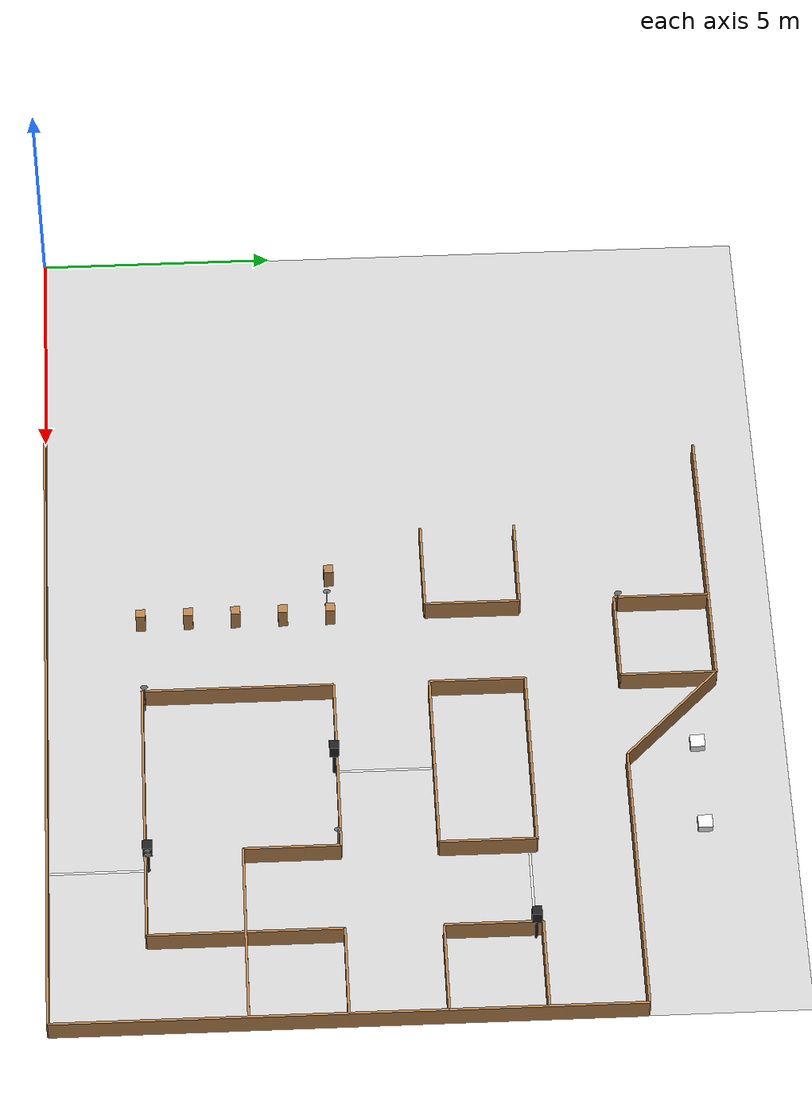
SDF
<sdf version="1.6">
 <world name="default">
  <include><uri>model://cube</uri><name>cube_1</name><pose>15.5 13.5 0 0 0 4.71238898038469</pose></include>
  <include><uri>model://cube</uri><name>cube_0</name><pose>13.5 13.5 0 0 0 4.71238898038469</pose></include>
  <model name="box_72">
   <pose>10.0 2.0 0.25 0 0 0</pose>
   <link name="link">
    <inertial>
     <mass>1</mass>
     <inertia><ixx>0</ixx><ixy>0</ixy><ixz>0</ixz><iyy>0</iyy><iyz>0</iyz><izz>0</izz></inertia>
    </inertial>
    <collision name="collision"><geometry><box><size>0.2 0.2 0.5</size></box></geometry></collision>
    <visual name="visual">
     <geometry><box><size>0.2 0.2 0.5</size></box></geometry>
     <material>
      <script><name>Gazebo/WoodPallet</name><uri>file://media/materials/scripts/gazebo.material</uri></script>
     </material>
    </visual>
   </link>
   <static>1</static>
  </model>
  <model name="box_69">
   <pose>10.0 3.0 0.25 0 0 0</pose>
   <link name="link">
    <inertial>
     <mass>1</mass>
     <inertia><ixx>0</ixx><ixy>0</ixy><ixz>0</ixz><iyy>0</iyy><iyz>0</iyz><izz>0</izz></inertia>
    </inertial>
    <collision name="collision"><geometry><box><size>0.2 0.2 0.5</size></box></geometry></collision>
    <visual name="visual">
     <geometry><box><size>0.2 0.2 0.5</size></box></geometry>
     <material>
      <script><name>Gazebo/WoodPallet</name><uri>file://media/materials/scripts/gazebo.material</uri></script>
     </material>
    </visual>
   </link>
   <static>1</static>
  </model>
  <model name="box_67">
   <pose>10.0 4.0 0.25 0 0 0</pose>
   <link name="link">
    <inertial>
     <mass>1</mass>
     <inertia><ixx>0</ixx><ixy>0</ixy><ixz>0</ixz><iyy>0</iyy><iyz>0</iyz><izz>0</izz></inertia>
    </inertial>
    <collision name="collision"><geometry><box><size>0.2 0.2 0.5</size></box></geometry></collision>
    <visual name="visual">
     <geometry><box><size>0.2 0.2 0.5</size></box></geometry>
     <material>
      <script><name>Gazebo/WoodPallet</name><uri>file://media/materials/scripts/gazebo.material</uri></script>
     </material>
    </visual>
   </link>
   <static>1</static>
  </model>
  <model name="box_64">
   <pose>10.0 4.0 0.25 0 0 0</pose>
   <link name="link">
    <inertial>
     <mass>1</mass>
     <inertia><ixx>0</ixx><ixy>0</ixy><ixz>0</ixz><iyy>0</iyy><iyz>0</iyz><izz>0</izz></inertia>
    </inertial>
    <collision name="collision"><geometry><box><size>0.2 0.2 0.5</size></box></geometry></collision>
    <visual name="visual">
     <geometry><box><size>0.2 0.2 0.5</size></box></geometry>
     <material>
      <script><name>Gazebo/WoodPallet</name><uri>file://media/materials/scripts/gazebo.material</uri></script>
     </material>
    </visual>
   </link>
   <static>1</static>
  </model>
  <model name="box_61">
   <pose>10.0 5.0 0.25 0 0 0</pose>
   <link name="link">
    <inertial>
     <mass>1</mass>
     <inertia><ixx>0</ixx><ixy>0</ixy><ixz>0</ixz><iyy>0</iyy><iyz>0</iyz><izz>0</izz></inertia>
    </inertial>
    <collision name="collision"><geometry><box><size>0.2 0.2 0.5</size></box></geometry></collision>
    <visual name="visual">
     <geometry><box><size>0.2 0.2 0.5</size></box></geometry>
     <material>
      <script><name>Gazebo/WoodPallet</name><uri>file://media/materials/scripts/gazebo.material</uri></script>
     </material>
    </visual>
   </link>
   <static>1</static>
  </model>
  <model name="box_59">
   <pose>10.0 6.0 0.25 0 0 0</pose>
   <link name="link">
    <inertial>
     <mass>1</mass>
     <inertia><ixx>0</ixx><ixy>0</ixy><ixz>0</ixz><iyy>0</iyy><iyz>0</iyz><izz>0</izz></inertia>
    </inertial>
    <collision name="collision"><geometry><box><size>0.2 0.2 0.5</size></box></geometry></collision>
    <visual name="visual">
     <geometry><box><size>0.2 0.2 0.5</size></box></geometry>
     <material>
      <script><name>Gazebo/WoodPallet</name><uri>file://media/materials/scripts/gazebo.material</uri></script>
     </material>
    </visual>
   </link>
   <static>1</static>
  </model>
  <model name="box_58">
   <pose>9.0 6.0 0.25 0 0 0</pose>
   <link name="link">
    <inertial>
     <mass>1</mass>
     <inertia><ixx>0</ixx><ixy>0</ixy><ixz>0</ixz><iyy>0</iyy><iyz>0</iyz><izz>0</izz></inertia>
    </inertial>
    <collision name="collision"><geometry><box><size>0.2 0.2 0.5</size></box></geometry></collision>
    <visual name="visual">
     <geometry><box><size>0.2 0.2 0.5</size></box></geometry>
     <material>
      <script><name>Gazebo/WoodPallet</name><uri>file://media/materials/scripts/gazebo.material</uri></script>
     </material>
    </visual>
   </link>
   <static>1</static>
  </model>
  <include>
   <uri>model://forward-left-sign</uri>
   <name>sign_3</name>
   <pose>10.14 12.06 0 0 0 1.5707963267948966</pose>
  </include>
  <include>
   <uri>model://left-sign</uri>
   <name>sign_2</name>
   <pose>15.86 5.9399999999999995 0 0 0 4.71238898038469</pose>
  </include>
  <include>
   <uri>model://forward-sign</uri>
   <name>sign_1</name>
   <pose>9.86 5.9399999999999995 0 0 0 4.71238898038469</pose>
  </include>
  <include>
   <uri>model://forward-left-sign</uri>
   <name>sign_0</name>
   <pose>12.14 2.0600000000000005 0 0 0 1.5707963267948966</pose>
  </include>
  <model name="box_40">
   <pose>12.0 13.0 0.25 0 0 -1.5707963267948966</pose>
   <link name="link">
    <inertial>
     <mass>1</mass>
     <inertia><ixx>0</ixx><ixy>0</ixy><ixz>0</ixz><iyy>0</iyy><iyz>0</iyz><izz>0</izz></inertia>
    </inertial>
    <collision name="collision"><geometry><box><size>2.0 0.05 0.5</size></box></geometry></collision>
    <visual name="visual">
     <geometry><box><size>2.0 0.05 0.5</size></box></geometry>
     <material>
      <script><name>Gazebo/WoodPallet</name><uri>file://media/materials/scripts/gazebo.material</uri></script>
     </material>
    </visual>
   </link>
   <static>1</static>
  </model>
  <model name="box_39">
   <pose>11.0 12.0 0.25 0 0 -3.141592653589793</pose>
   <link name="link">
    <inertial>
     <mass>1</mass>
     <inertia><ixx>0</ixx><ixy>0</ixy><ixz>0</ixz><iyy>0</iyy><iyz>0</iyz><izz>0</izz></inertia>
    </inertial>
    <collision name="collision"><geometry><box><size>2.0 0.05 0.5</size></box></geometry></collision>
    <visual name="visual">
     <geometry><box><size>2.0 0.05 0.5</size></box></geometry>
     <material>
      <script><name>Gazebo/WoodPallet</name><uri>file://media/materials/scripts/gazebo.material</uri></script>
     </material>
    </visual>
   </link>
   <static>1</static>
  </model>
  <model name="box_38">
   <pose>10.0 13.0 0.25 0 0 1.5707963267948966</pose>
   <link name="link">
    <inertial>
     <mass>1</mass>
     <inertia><ixx>0</ixx><ixy>0</ixy><ixz>0</ixz><iyy>0</iyy><iyz>0</iyz><izz>0</izz></inertia>
    </inertial>
    <collision name="collision"><geometry><box><size>2.0 0.05 0.5</size></box></geometry></collision>
    <visual name="visual">
     <geometry><box><size>2.0 0.05 0.5</size></box></geometry>
     <material>
      <script><name>Gazebo/WoodPallet</name><uri>file://media/materials/scripts/gazebo.material</uri></script>
     </material>
    </visual>
   </link>
   <static>1</static>
  </model>
  <model name="box_25">
   <pose>9.0 10.0 0.25 0 0 -3.141592653589793</pose>
   <link name="link">
    <inertial>
     <mass>1</mass>
     <inertia><ixx>0</ixx><ixy>0</ixy><ixz>0</ixz><iyy>0</iyy><iyz>0</iyz><izz>0</izz></inertia>
    </inertial>
    <collision name="collision"><geometry><box><size>2.0 0.05 0.5</size></box></geometry></collision>
    <visual name="visual">
     <geometry><box><size>2.0 0.05 0.5</size></box></geometry>
     <material>
      <script><name>Gazebo/WoodPallet</name><uri>file://media/materials/scripts/gazebo.material</uri></script>
     </material>
    </visual>
   </link>
   <static>1</static>
  </model>
  <model name="box_23">
   <pose>9.0 8.0 0.25 0 0 -0.0</pose>
   <link name="link">
    <inertial>
     <mass>1</mass>
     <inertia><ixx>0</ixx><ixy>0</ixy><ixz>0</ixz><iyy>0</iyy><iyz>0</iyz><izz>0</izz></inertia>
    </inertial>
    <collision name="collision"><geometry><box><size>2.0 0.05 0.5</size></box></geometry></collision>
    <visual name="visual">
     <geometry><box><size>2.0 0.05 0.5</size></box></geometry>
     <material>
      <script><name>Gazebo/WoodPallet</name><uri>file://media/materials/scripts/gazebo.material</uri></script>
     </material>
    </visual>
   </link>
   <static>1</static>
  </model>
  <model name="box_22">
   <pose>10.0 9.0 0.25 0 0 1.5707963267948966</pose>
   <link name="link">
    <inertial>
     <mass>1</mass>
     <inertia><ixx>0</ixx><ixy>0</ixy><ixz>0</ixz><iyy>0</iyy><iyz>0</iyz><izz>0</izz></inertia>
    </inertial>
    <collision name="collision"><geometry><box><size>2.0 0.05 0.5</size></box></geometry></collision>
    <visual name="visual">
     <geometry><box><size>2.0 0.05 0.5</size></box></geometry>
     <material>
      <script><name>Gazebo/WoodPallet</name><uri>file://media/materials/scripts/gazebo.material</uri></script>
     </material>
    </visual>
   </link>
   <static>1</static>
  </model>
  <model name="box_21">
   <pose>19.0 8.0 0.25 0 0 -3.141592653589793</pose>
   <link name="link">
    <inertial>
     <mass>1</mass>
     <inertia><ixx>0</ixx><ixy>0</ixy><ixz>0</ixz><iyy>0</iyy><iyz>0</iyz><izz>0</izz></inertia>
    </inertial>
    <collision name="collision"><geometry><box><size>2.0 0.05 0.5</size></box></geometry></collision>
    <visual name="visual">
     <geometry><box><size>2.0 0.05 0.5</size></box></geometry>
     <material>
      <script><name>Gazebo/WoodPallet</name><uri>file://media/materials/scripts/gazebo.material</uri></script>
     </material>
    </visual>
   </link>
   <static>1</static>
  </model>
  <model name="box_20">
   <pose>18.0 9.0 0.25 0 0 1.5707963267948966</pose>
   <link name="link">
    <inertial>
     <mass>1</mass>
     <inertia><ixx>0</ixx><ixy>0</ixy><ixz>0</ixz><iyy>0</iyy><iyz>0</iyz><izz>0</izz></inertia>
    </inertial>
    <collision name="collision"><geometry><box><size>2.0 0.05 0.5</size></box></geometry></collision>
    <visual name="visual">
     <geometry><box><size>2.0 0.05 0.5</size></box></geometry>
     <material>
      <script><name>Gazebo/WoodPallet</name><uri>file://media/materials/scripts/gazebo.material</uri></script>
     </material>
    </visual>
   </link>
   <static>1</static>
  </model>
  <model name="box_19">
   <pose>19.0 10.0 0.25 0 0 -0.0</pose>
   <link name="link">
    <inertial>
     <mass>1</mass>
     <inertia><ixx>0</ixx><ixy>0</ixy><ixz>0</ixz><iyy>0</iyy><iyz>0</iyz><izz>0</izz></inertia>
    </inertial>
    <collision name="collision"><geometry><box><size>2.0 0.05 0.5</size></box></geometry></collision>
    <visual name="visual">
     <geometry><box><size>2.0 0.05 0.5</size></box></geometry>
     <material>
      <script><name>Gazebo/WoodPallet</name><uri>file://media/materials/scripts/gazebo.material</uri></script>
     </material>
    </visual>
   </link>
   <static>1</static>
  </model>
  <model name="box_18">
   <pose>14.0 10.0 0.25 0 0 -0.0</pose>
   <link name="link">
    <inertial>
     <mass>1</mass>
     <inertia><ixx>0</ixx><ixy>0</ixy><ixz>0</ixz><iyy>0</iyy><iyz>0</iyz><izz>0</izz></inertia>
    </inertial>
    <collision name="collision"><geometry><box><size>4.0 0.05 0.5</size></box></geometry></collision>
    <visual name="visual">
     <geometry><box><size>4.0 0.05 0.5</size></box></geometry>
     <material>
      <script><name>Gazebo/WoodPallet</name><uri>file://media/materials/scripts/gazebo.material</uri></script>
     </material>
    </visual>
   </link>
   <static>1</static>
  </model>
  <model name="box_17">
   <pose>16.0 9.0 0.25 0 0 -1.5707963267948966</pose>
   <link name="link">
    <inertial>
     <mass>1</mass>
     <inertia><ixx>0</ixx><ixy>0</ixy><ixz>0</ixz><iyy>0</iyy><iyz>0</iyz><izz>0</izz></inertia>
    </inertial>
    <collision name="collision"><geometry><box><size>2.0 0.05 0.5</size></box></geometry></collision>
    <visual name="visual">
     <geometry><box><size>2.0 0.05 0.5</size></box></geometry>
     <material>
      <script><name>Gazebo/WoodPallet</name><uri>file://media/materials/scripts/gazebo.material</uri></script>
     </material>
    </visual>
   </link>
   <static>1</static>
  </model>
  <model name="box_16">
   <pose>14.0 8.0 0.25 0 0 -3.141592653589793</pose>
   <link name="link">
    <inertial>
     <mass>1</mass>
     <inertia><ixx>0</ixx><ixy>0</ixy><ixz>0</ixz><iyy>0</iyy><iyz>0</iyz><izz>0</izz></inertia>
    </inertial>
    <collision name="collision"><geometry><box><size>4.0 0.05 0.5</size></box></geometry></collision>
    <visual name="visual">
     <geometry><box><size>4.0 0.05 0.5</size></box></geometry>
     <material>
      <script><name>Gazebo/WoodPallet</name><uri>file://media/materials/scripts/gazebo.material</uri></script>
     </material>
    </visual>
   </link>
   <static>1</static>
  </model>
  <model name="box_15">
   <pose>12.0 9.0 0.25 0 0 1.5707963267948966</pose>
   <link name="link">
    <inertial>
     <mass>1</mass>
     <inertia><ixx>0</ixx><ixy>0</ixy><ixz>0</ixz><iyy>0</iyy><iyz>0</iyz><izz>0</izz></inertia>
    </inertial>
    <collision name="collision"><geometry><box><size>2.0 0.05 0.5</size></box></geometry></collision>
    <visual name="visual">
     <geometry><box><size>2.0 0.05 0.5</size></box></geometry>
     <material>
      <script><name>Gazebo/WoodPallet</name><uri>file://media/materials/scripts/gazebo.material</uri></script>
     </material>
    </visual>
   </link>
   <static>1</static>
  </model>
  <model name="box_14">
   <pose>19.0 6.0 0.25 0 0 -3.141592653589793</pose>
   <link name="link">
    <inertial>
     <mass>1</mass>
     <inertia><ixx>0</ixx><ixy>0</ixy><ixz>0</ixz><iyy>0</iyy><iyz>0</iyz><izz>0</izz></inertia>
    </inertial>
    <collision name="collision"><geometry><box><size>2.0 0.05 0.5</size></box></geometry></collision>
    <visual name="visual">
     <geometry><box><size>2.0 0.05 0.5</size></box></geometry>
     <material>
      <script><name>Gazebo/WoodPallet</name><uri>file://media/materials/scripts/gazebo.material</uri></script>
     </material>
    </visual>
   </link>
   <static>1</static>
  </model>
  <model name="box_13">
   <pose>18.0 4.0 0.25 0 0 -1.5707963267948966</pose>
   <link name="link">
    <inertial>
     <mass>1</mass>
     <inertia><ixx>0</ixx><ixy>0</ixy><ixz>0</ixz><iyy>0</iyy><iyz>0</iyz><izz>0</izz></inertia>
    </inertial>
    <collision name="collision"><geometry><box><size>4.0 0.05 0.5</size></box></geometry></collision>
    <visual name="visual">
     <geometry><box><size>4.0 0.05 0.5</size></box></geometry>
     <material>
      <script><name>Gazebo/WoodPallet</name><uri>file://media/materials/scripts/gazebo.material</uri></script>
     </material>
    </visual>
   </link>
   <static>1</static>
  </model>
  <model name="box_12">
   <pose>15.0 2.0 0.25 0 0 -3.141592653589793</pose>
   <link name="link">
    <inertial>
     <mass>1</mass>
     <inertia><ixx>0</ixx><ixy>0</ixy><ixz>0</ixz><iyy>0</iyy><iyz>0</iyz><izz>0</izz></inertia>
    </inertial>
    <collision name="collision"><geometry><box><size>6.0 0.05 0.5</size></box></geometry></collision>
    <visual name="visual">
     <geometry><box><size>6.0 0.05 0.5</size></box></geometry>
     <material>
      <script><name>Gazebo/WoodPallet</name><uri>file://media/materials/scripts/gazebo.material</uri></script>
     </material>
    </visual>
   </link>
   <static>1</static>
  </model>
  <model name="box_11">
   <pose>12.0 4.0 0.25 0 0 1.5707963267948966</pose>
   <link name="link">
    <inertial>
     <mass>1</mass>
     <inertia><ixx>0</ixx><ixy>0</ixy><ixz>0</ixz><iyy>0</iyy><iyz>0</iyz><izz>0</izz></inertia>
    </inertial>
    <collision name="collision"><geometry><box><size>4.0 0.05 0.5</size></box></geometry></collision>
    <visual name="visual">
     <geometry><box><size>4.0 0.05 0.5</size></box></geometry>
     <material>
      <script><name>Gazebo/WoodPallet</name><uri>file://media/materials/scripts/gazebo.material</uri></script>
     </material>
    </visual>
   </link>
   <static>1</static>
  </model>
  <model name="box_10">
   <pose>14.0 6.0 0.25 0 0 -0.0</pose>
   <link name="link">
    <inertial>
     <mass>1</mass>
     <inertia><ixx>0</ixx><ixy>0</ixy><ixz>0</ixz><iyy>0</iyy><iyz>0</iyz><izz>0</izz></inertia>
    </inertial>
    <collision name="collision"><geometry><box><size>4.0 0.05 0.5</size></box></geometry></collision>
    <visual name="visual">
     <geometry><box><size>4.0 0.05 0.5</size></box></geometry>
     <material>
      <script><name>Gazebo/WoodPallet</name><uri>file://media/materials/scripts/gazebo.material</uri></script>
     </material>
    </visual>
   </link>
   <static>1</static>
  </model>
  <model name="box_9">
   <pose>16.0 5.0 0.25 0 0 -1.5707963267948966</pose>
   <link name="link">
    <inertial>
     <mass>1</mass>
     <inertia><ixx>0</ixx><ixy>0</ixy><ixz>0</ixz><iyy>0</iyy><iyz>0</iyz><izz>0</izz></inertia>
    </inertial>
    <collision name="collision"><geometry><box><size>2.0 0.05 0.5</size></box></geometry></collision>
    <visual name="visual">
     <geometry><box><size>2.0 0.05 0.5</size></box></geometry>
     <material>
      <script><name>Gazebo/WoodPallet</name><uri>file://media/materials/scripts/gazebo.material</uri></script>
     </material>
    </visual>
   </link>
   <static>1</static>
  </model>
  <model name="box_8">
   <pose>18.0 4.0 0.25 0 0 -0.0</pose>
   <link name="link">
    <inertial>
     <mass>1</mass>
     <inertia><ixx>0</ixx><ixy>0</ixy><ixz>0</ixz><iyy>0</iyy><iyz>0</iyz><izz>0</izz></inertia>
    </inertial>
    <collision name="collision"><geometry><box><size>4.0 0.05 0.5</size></box></geometry></collision>
    <visual name="visual">
     <geometry><box><size>4.0 0.05 0.5</size></box></geometry>
     <material>
      <script><name>Gazebo/WoodPallet</name><uri>file://media/materials/scripts/gazebo.material</uri></script>
     </material>
    </visual>
   </link>
   <static>1</static>
  </model>
  <model name="box_7">
   <pose>9.0 14.0 0.25 0 0 -0.0</pose>
   <link name="link">
    <inertial>
     <mass>1</mass>
     <inertia><ixx>0</ixx><ixy>0</ixy><ixz>0</ixz><iyy>0</iyy><iyz>0</iyz><izz>0</izz></inertia>
    </inertial>
    <collision name="collision"><geometry><box><size>6.0 0.05 0.5</size></box></geometry></collision>
    <visual name="visual">
     <geometry><box><size>6.0 0.05 0.5</size></box></geometry>
     <material>
      <script><name>Gazebo/WoodPallet</name><uri>file://media/materials/scripts/gazebo.material</uri></script>
     </material>
    </visual>
   </link>
   <static>1</static>
  </model>
  <model name="box_6">
   <pose>13.0 13.0 0.25 0 0 -0.7853981633974483</pose>
   <link name="link">
    <inertial>
     <mass>1</mass>
     <inertia><ixx>0</ixx><ixy>0</ixy><ixz>0</ixz><iyy>0</iyy><iyz>0</iyz><izz>0</izz></inertia>
    </inertial>
    <collision name="collision">
     <geometry><box><size>2.8284271247461903 0.05 0.5</size></box></geometry>
    </collision>
    <visual name="visual">
     <geometry><box><size>2.8284271247461903 0.05 0.5</size></box></geometry>
     <material>
      <script><name>Gazebo/WoodPallet</name><uri>file://media/materials/scripts/gazebo.material</uri></script>
     </material>
    </visual>
   </link>
   <static>1</static>
  </model>
  <model name="box_5">
   <pose>17.0 12.0 0.25 0 0 -0.0</pose>
   <link name="link">
    <inertial>
     <mass>1</mass>
     <inertia><ixx>0</ixx><ixy>0</ixy><ixz>0</ixz><iyy>0</iyy><iyz>0</iyz><izz>0</izz></inertia>
    </inertial>
    <collision name="collision"><geometry><box><size>6.0 0.05 0.5</size></box></geometry></collision>
    <visual name="visual">
     <geometry><box><size>6.0 0.05 0.5</size></box></geometry>
     <material>
      <script><name>Gazebo/WoodPallet</name><uri>file://media/materials/scripts/gazebo.material</uri></script>
     </material>
    </visual>
   </link>
   <static>1</static>
  </model>
  <model name="box_4">
   <pose>20.0 6.0 0.25 0 0 -1.5707963267948966</pose>
   <link name="link">
    <inertial>
     <mass>1</mass>
     <inertia><ixx>0</ixx><ixy>0</ixy><ixz>0</ixz><iyy>0</iyy><iyz>0</iyz><izz>0</izz></inertia>
    </inertial>
    <collision name="collision"><geometry><box><size>12.0 0.05 0.5</size></box></geometry></collision>
    <visual name="visual">
     <geometry><box><size>12.0 0.05 0.5</size></box></geometry>
     <material>
      <script><name>Gazebo/WoodPallet</name><uri>file://media/materials/scripts/gazebo.material</uri></script>
     </material>
    </visual>
   </link>
   <static>1</static>
  </model>
  <model name="box_3">
   <pose>10.0 0.0 0.25 0 0 -3.141592653589793</pose>
   <link name="link">
    <inertial>
     <mass>1</mass>
     <inertia><ixx>0</ixx><ixy>0</ixy><ixz>0</ixz><iyy>0</iyy><iyz>0</iyz><izz>0</izz></inertia>
    </inertial>
    <collision name="collision"><geometry><box><size>20.0 0.05 0.5</size></box></geometry></collision>
    <visual name="visual">
     <geometry><box><size>20.0 0.05 0.5</size></box></geometry>
     <material>
      <script><name>Gazebo/WoodPallet</name><uri>file://media/materials/scripts/gazebo.material</uri></script>
     </material>
    </visual>
   </link>
   <static>1</static>
  </model>
  <model name="tl_line_3">
   <static>1</static>
   <pose>17.0 9.86 0.001 0 0 6.283185307179586</pose>
   <link name="link">
    <collision name="collision">
     <geometry><plane><normal>0 0 1</normal><size>2.0 0.05</size></plane></geometry>
     <surface><friction><ode><mu>100</mu><mu2>50</mu2></ode></friction></surface>
    </collision>
    <visual name="visual">
     <geometry><plane><normal>0 0 1</normal><size>2.0 0.05</size></plane></geometry>
     <material>
      <script><name>Gazebo/White</name><uri>file://media/materials/scripts/gazebo.material</uri></script>
     </material>
    </visual>
   </link>
  </model>
  <include>
   <uri>model://traffic-light</uri>
   <name>traffic_light_2</name>
   <pose>18.06 9.86 0 0 0 6.283185307179586</pose>
  </include>
  <model name="tl_line_2">
   <static>1</static>
   <pose>13.86 7.0 0.001 0 0 4.71238898038469</pose>
   <link name="link">
    <collision name="collision">
     <geometry><plane><normal>0 0 1</normal><size>2.0 0.05</size></plane></geometry>
     <surface><friction><ode><mu>100</mu><mu2>50</mu2></ode></friction></surface>
    </collision>
    <visual name="visual">
     <geometry><plane><normal>0 0 1</normal><size>2.0 0.05</size></plane></geometry>
     <material>
      <script><name>Gazebo/White</name><uri>file://media/materials/scripts/gazebo.material</uri></script>
     </material>
    </visual>
   </link>
  </model>
  <include>
   <uri>model://traffic-light</uri>
   <name>traffic_light_1</name>
   <pose>13.86 5.9399999999999995 0 0 0 4.71238898038469</pose>
  </include>
  <model name="tl_line_1">
   <static>1</static>
   <pose>16.14 1.0 0.001 0 0 1.5707963267948966</pose>
   <link name="link">
    <collision name="collision">
     <geometry><plane><normal>0 0 1</normal><size>2.0 0.05</size></plane></geometry>
     <surface><friction><ode><mu>100</mu><mu2>50</mu2></ode></friction></surface>
    </collision>
    <visual name="visual">
     <geometry><plane><normal>0 0 1</normal><size>2.0 0.05</size></plane></geometry>
     <material>
      <script><name>Gazebo/White</name><uri>file://media/materials/scripts/gazebo.material</uri></script>
     </material>
    </visual>
   </link>
  </model>
  <include>
   <uri>model://traffic-light</uri>
   <name>traffic_light_0</name>
   <pose>16.14 2.0600000000000005 0 0 0 1.5707963267948966</pose>
  </include>
  <include><uri>model://my_ground_plane</uri><pose>10 10 0 0 0 0</pose></include>
 </world>
</sdf>
